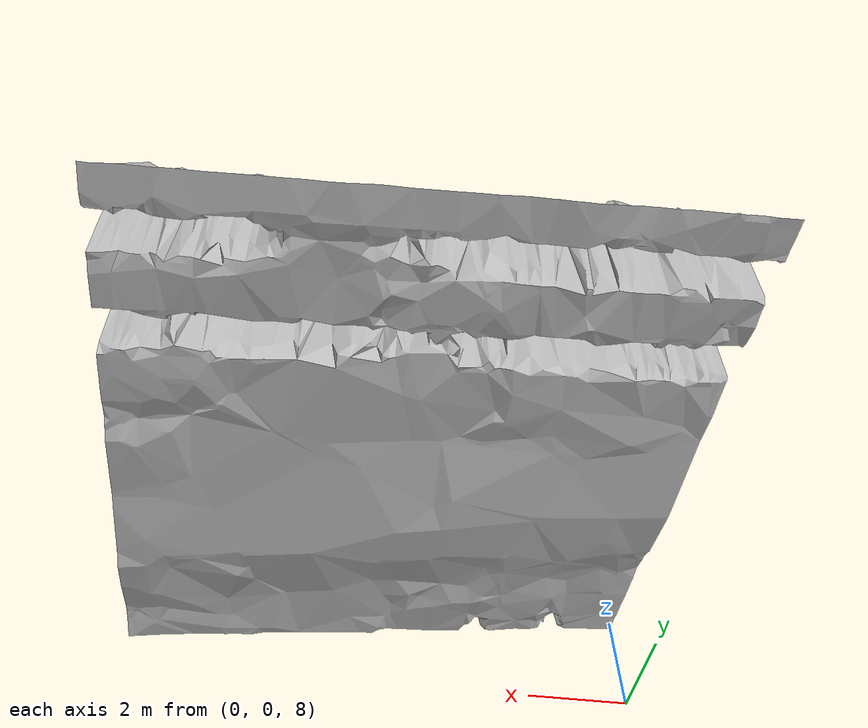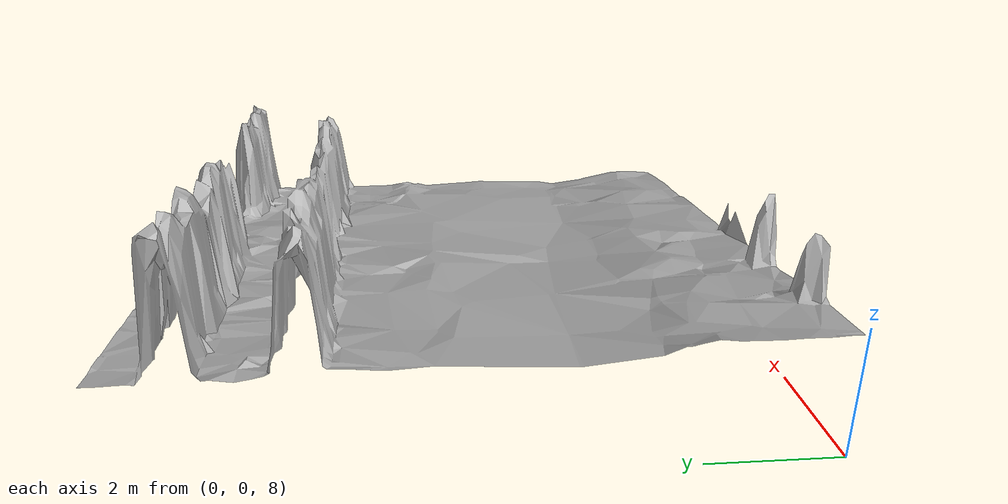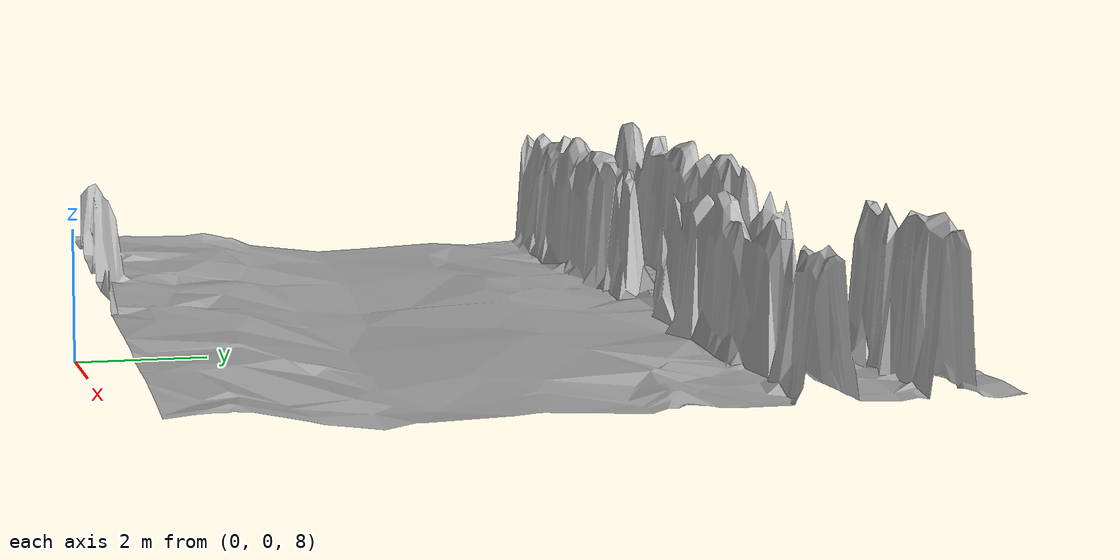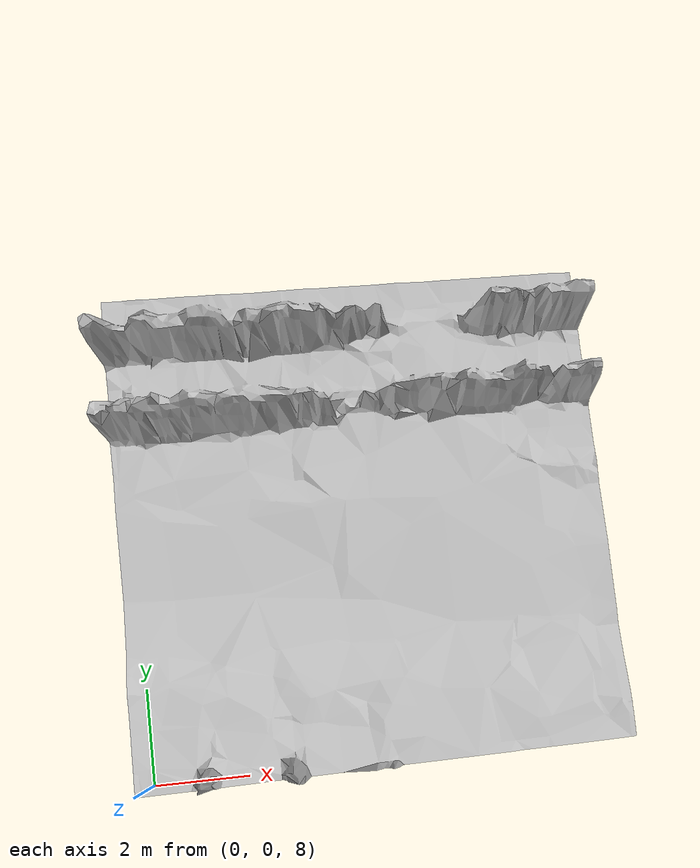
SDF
<?xml version="1.0" ?>
<sdf version="1.10">
    <model name="map_10_20">
        <link name="map_10_20_link">
            <visual name="map_10_20_visual">
                <geometry>
                    <mesh>
                        <uri>meshes/visual/map_10_20.obj</uri>
                    </mesh>
                </geometry>
            </visual>
            <collision name="map_10_20_collision">
                <surface>
                    <friction>
                        <ode>
                            <mu>2.316343837943928</mu>
                            <mu2>2.316343837943928</mu2>
                        </ode>
                        <bullet>
                            <friction>2.316343837943928</friction>
                            <friction2>2.316343837943928</friction2>
                        </bullet>
                    </friction>
                </surface>
                <geometry>
                    <mesh>
                        <uri>meshes/visual/map_10_20.obj</uri>
                    </mesh>
                </geometry>
            </collision>
        </link>
        <static>True</static>
    </model>
</sdf>
